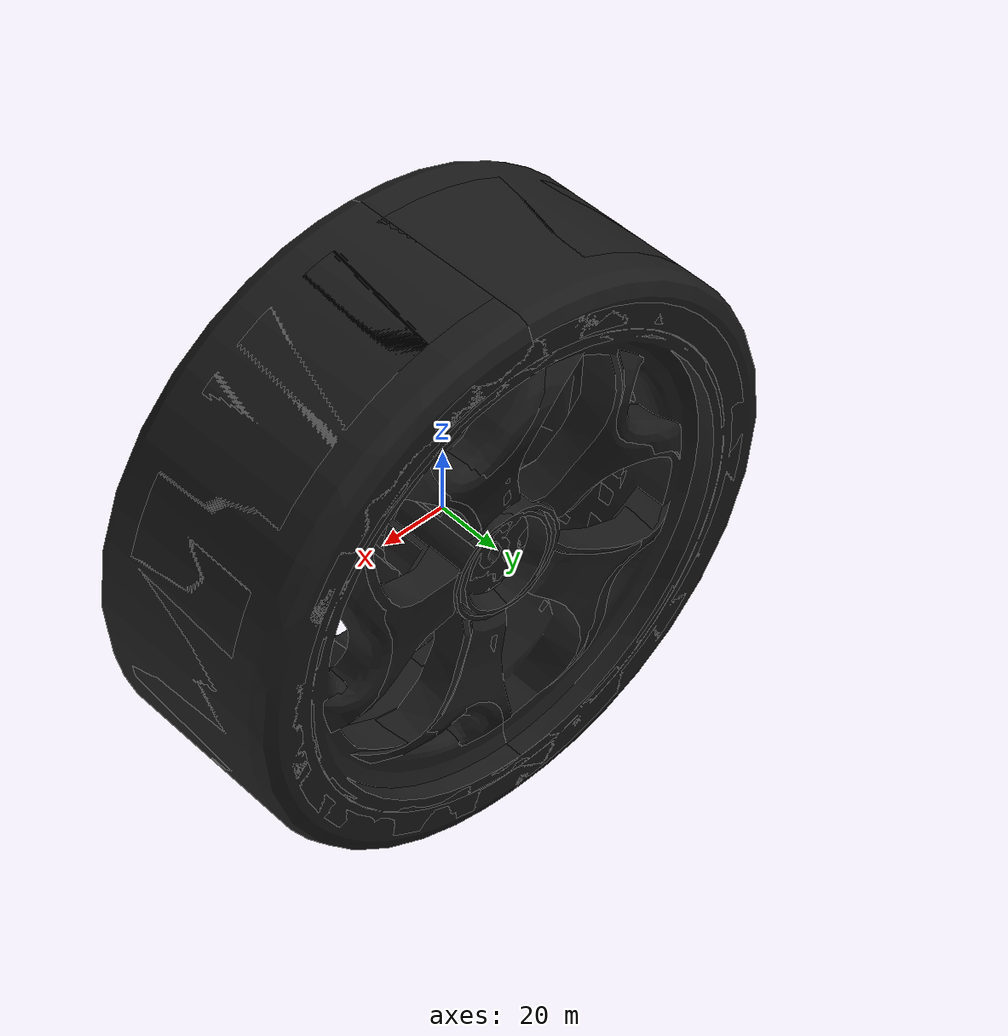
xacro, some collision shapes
<?xml version="1.0"?>
<robot name="autoware" xmlns:xacro="http://ros.org/wiki/xacro">
  <xacro:include filename="$(find vehicle_model)/urdf/body.xacro" />
  <xacro:include filename="$(find vehicle_model)/urdf/wheel.xacro" />
  <xacro:include filename="$(find vehicle_model)/urdf/steering.xacro" />

  <xacro:arg name="wheel_radius" default="0.341"/>
  <xacro:arg name="wheel_width" default="0.225"/>
  <xacro:arg name="wheel_base" default="2.950"/>
  <xacro:arg name="wheel_tread" default="1.55"/>
  <xacro:arg name="vehicle_mass" default="5000.0"/>
  <xacro:arg name="vehicle_length" default="4.82"/>
  <xacro:arg name="vehicle_width" default="1.81"/>
  <xacro:arg name="vehicle_height" default="1.5"/>

  <xacro:arg name="vehicle_mass_height" default="0.5"/>
  <xacro:property name="pi" value="3.1415926835897931"/>

  <link name="base_link"/>

  <xacro:body_macro suffix="wheel_base"
                    parent="base_link"
                    wheel_radius="$(arg wheel_radius)"
                    wheel_base="$(arg wheel_base)"
                    vehicle_mass="$(arg vehicle_mass)"
                    vehicle_mass_height="$(arg vehicle_mass_height)"
                    vehicle_length="$(arg vehicle_length)"
                    vehicle_width="$(arg vehicle_width)"
                    vehicle_height="$(arg vehicle_height)"/>

  <xacro:steering_macro suffix="steering_right_front" parent="wheel_base_link" x="$(arg wheel_base)" y="${-1*$(arg wheel_tread)/2}" yaw="0" length="$(arg wheel_width)"/>
  <xacro:steering_macro suffix="steering_left_front" parent="wheel_base_link" x="$(arg wheel_base)" y="${$(arg wheel_tread)/2}" yaw="0" length="$(arg wheel_width)"/>

  <xacro:wheel_macro suffix="wheel_right_front" parent="steering_right_front_link" x="0" y="0" yaw="${pi}" radius="$(arg wheel_radius)" width="$(arg wheel_width)"/>
  <xacro:wheel_macro suffix="wheel_left_front" parent="steering_left_front_link" x="0" y="0" yaw="${0}" radius="$(arg wheel_radius)" width="$(arg wheel_width)"/>
  <xacro:wheel_macro suffix="wheel_right_rear" parent="wheel_base_link" x="0" y="${-1*$(arg wheel_tread)/2}" yaw="${pi}" radius="$(arg wheel_radius)" width="$(arg wheel_width)"/>
  <xacro:wheel_macro suffix="wheel_left_rear" parent="wheel_base_link" x="0" y="${$(arg wheel_tread)/2}" yaw="${0}" radius="$(arg wheel_radius)" width="$(arg wheel_width)"/>

  <!-- actuator -->
 	<xacro:include filename="$(find vehicle_model)/urdf/actuator.xacro"/>

  <!-- gazebo -->
 	<xacro:include filename="$(find vehicle_model)/urdf/vehicle.gazebo"/>
</robot>

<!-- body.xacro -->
<robot xmlns:xacro="http://ros.org/wiki/xacro">
  <xacro:macro name="body_macro" params="suffix parent wheel_radius wheel_base vehicle_mass vehicle_mass_height vehicle_width vehicle_length vehicle_height">
  <xacro:property name="pi" value="3.1415926835897931" />
    <joint name="${suffix}_joint" type="fixed">
      <parent link="${parent}"/>
      <origin rpy="0 0 0" xyz="0 0 ${wheel_radius}"/>
      <child  link="${suffix}_link"/>
    </joint>
    <link name="${suffix}_link">
      <inertial>
        <origin xyz="${wheel_base/2} 0 0" rpy="0 0 0"/>
        <mass value="${vehicle_mass}"/>
        <inertia ixx="${(vehicle_width*vehicle_width+vehicle_mass_height*vehicle_mass_height)*vehicle_mass/12.0}" ixy="0.0" ixz="0.0"
                 iyy="${(vehicle_length*vehicle_length+vehicle_mass_height*vehicle_mass_height)*vehicle_mass/12.0}" iyz="0.0"
                 izz="${(vehicle_width*vehicle_width+vehicle_length*vehicle_length)*vehicle_mass/12.0}"/>
      </inertial>
      <visual>
        <origin xyz="0 0 0" rpy="0 0 0"/>
        <geometry>
          <mesh filename="package://vehicle_model/dae/body.dae" scale="${wheel_base/2.85} 1 1"/>
        </geometry>
        <material name="black">
            <color rgba="0.1 0.1 0.1 0.5"/>
        </material>
      </visual>
      <collision>
        <origin xyz="${wheel_base/2} 0 ${vehicle_height/2}" rpy="0 0 0"/>
        <geometry>
          <box size="${vehicle_length} 0.9 ${vehicle_height}"/>
        </geometry>
      </collision>
    </link>
  </xacro:macro>
</robot>

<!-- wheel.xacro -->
<robot xmlns:xacro="http://ros.org/wiki/xacro">
  <xacro:macro name="wheel_macro" params="suffix parent x y yaw radius width">
    <xacro:property name="pi" value="3.1415926835897931" />
    <xacro:property name="mass" value="40" />
    <joint name="${suffix}_joint" type="continuous">
      <origin rpy="0 0 ${pi/2}" xyz="${x} ${y} 0"/>
      <parent link="${parent}"/>
      <child  link="${suffix}_link"/>
      <axis xyz="1 0 0"/>
      <dynamics damping="0.1"/>
      <limit effort="50000" velocity="50" />
      <joint_properties damping="0.0" friction="0.0" />
    </joint>

    <link name="${suffix}_link">
      <visual>
        <geometry>
          <mesh filename="package://vehicle_model/dae/wheel.dae" scale="${3*radius} ${3*radius} ${3*radius}"/>
        </geometry>
        <origin xyz="0 0 0" rpy="0 0 ${yaw}"/>
        <material name="gray">
          <color rgba="0.1 0.1 0.1 2.0"/>
        </material>
      </visual>

      <inertial>
        <origin xyz="0 0 0" rpy="0 0 0"/>
        <mass value="${mass}"/>
        <inertia ixx="${mass*radius*radius/2}"  ixy="0"  ixz="0" iyy="${radius*radius*mass/4+width*width*mass/12}" iyz="0" izz="${radius*radius*mass/4+width*width*mass/12}" />
      </inertial>
      <collision>
        <origin xyz="0 0 0" rpy="0 ${pi/2} 0"/>
        <geometry>
          <cylinder radius="${radius}" length="${width}" />
        </geometry>
      </collision>
    </link>
  </xacro:macro>
</robot>

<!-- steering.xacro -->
<robot xmlns:xacro="http://ros.org/wiki/xacro">
  <xacro:macro name="steering_macro" params="suffix parent x y yaw length">
    <xacro:property name="pi" value="3.1415926835897931" />
    <xacro:property name="radius" value="0.1" />
    <xacro:property name="length" value="0.01" />
    <xacro:property name="mass" value="10.0" />

    <joint name="${suffix}_joint" type="revolute">
      <origin rpy="0 0 0" xyz="${x} ${y} 0"/>
      <parent link="${parent}"/>
      <child  link="${suffix}_link"/>
      <axis xyz="0 0 1"/>
      <limit effort="100000000.0" lower="-0.6" upper="0.6" velocity="0.5"/>
    </joint>

    <link name="${suffix}_link">
      <visual>
        <geometry>
          <cylinder radius="${radius}" length="${length}"/>
        </geometry>
        <origin xyz="0 0 0" rpy="${pi/2} 0 0"/>
        <material name="black">
          <color rgba="0.1 0.1 0.1 2.0"/>
        </material>
      </visual>
      <inertial>
        <origin xyz="0 0 0" rpy="0 0 0"/>
        <mass value="${mass}"/>
        <inertia ixx="${radius*radius*mass/4+length*length*mass/12}"  ixy="0"  ixz="0"
                 iyy="${mass*radius*radius/2}" iyz="0"
                 izz="${radius*radius*mass/4+length*length*mass/12}" />
      </inertial>
    </link>
  </xacro:macro>
</robot>
